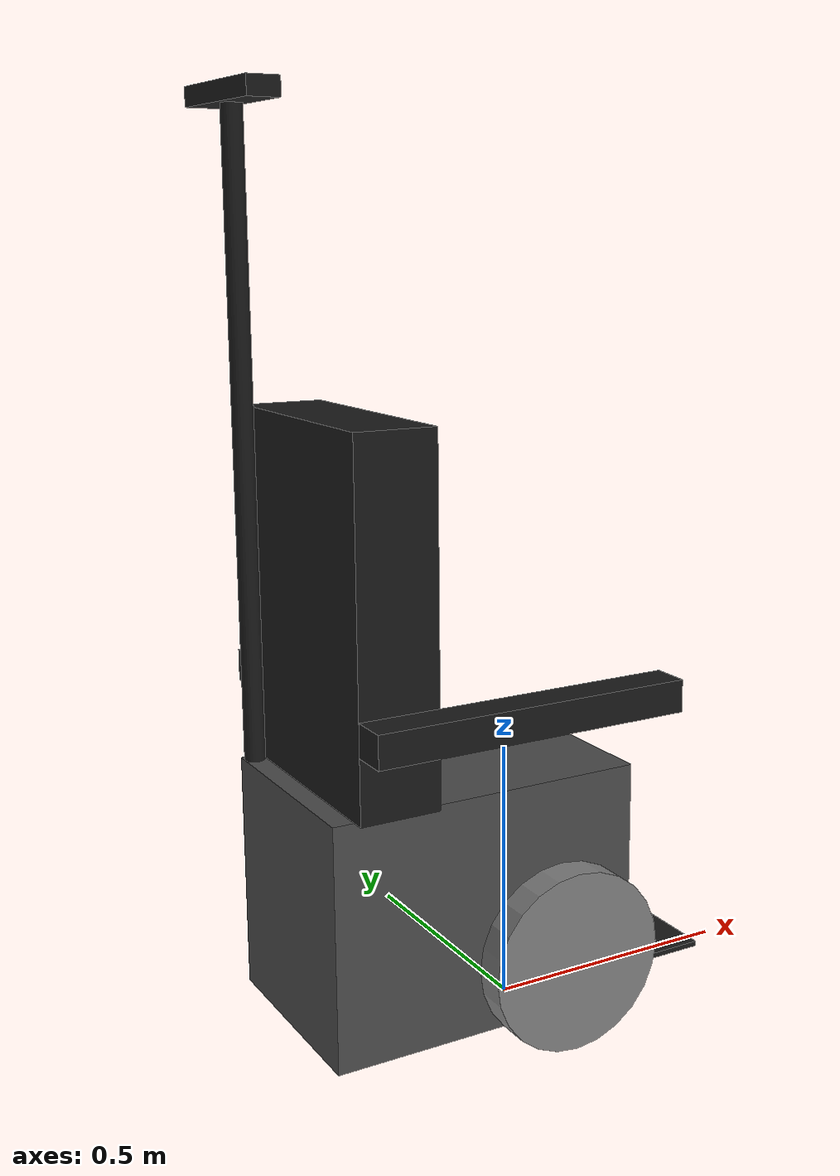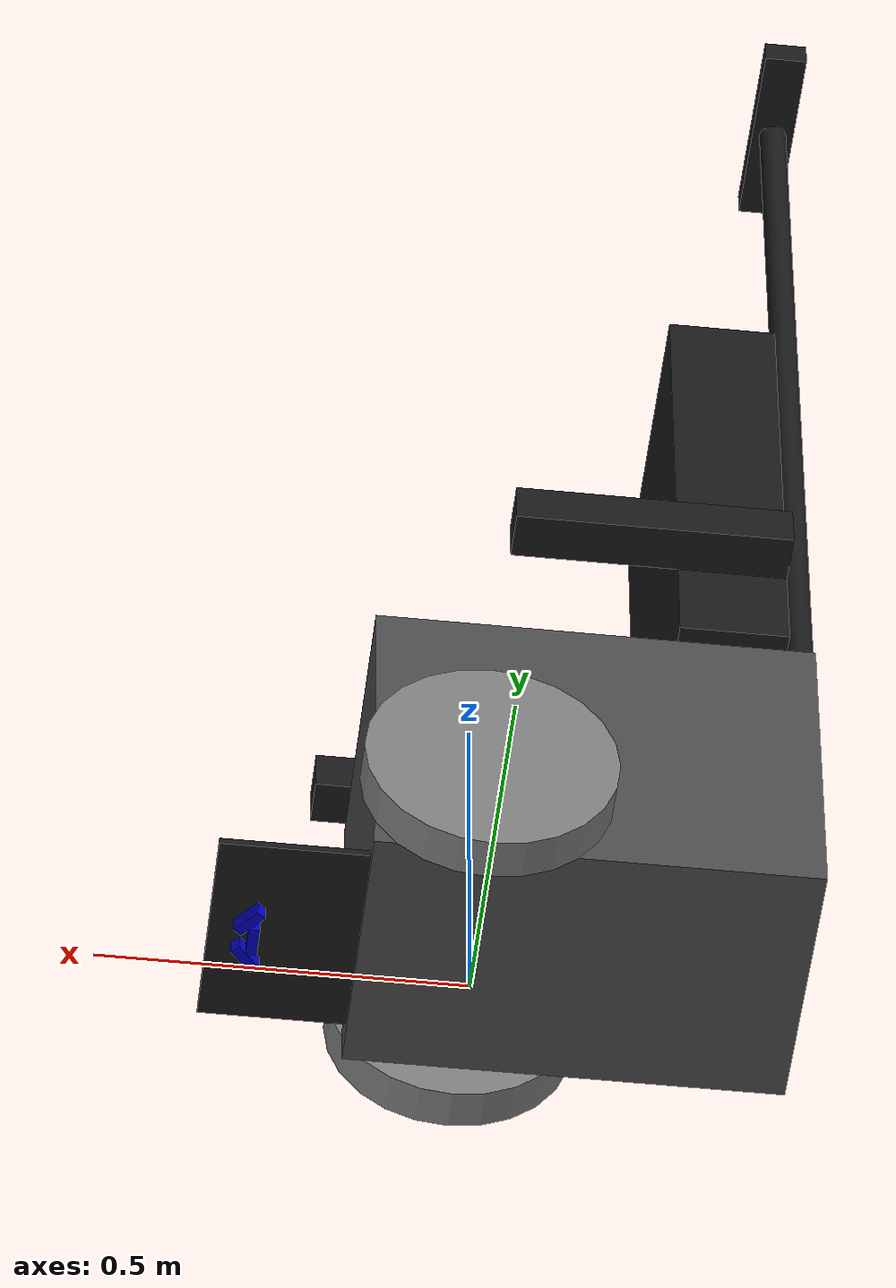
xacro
<?xml version="1.0"?>
<robot name="wheelchair" xmlns:xacro="http://www.ros.org/wiki/xacro">
    <!-- useful definition -->
    <xacro:property name="halfpi" value="1.57079633" />
    <xacro:property name="sixthpi" value="0.523598776" />

    <!-- wheelchair properties -->
    <xacro:property name="wheel_diameter" value="0.34" />
    <xacro:property name="wheel_thickness" value="0.06" />

    <!-- Robot movement base representation -->
    <xacro:property name="robot_base_height" value="0.45" />
    <xacro:property name="robot_base_length" value="0.6" />
    <xacro:property name="robot_base_width" value="0.4" />

    <xacro:property name="robot_base_offset_height" value="0.05" />
    <xacro:property name="robot_wheelbase_offset" value="0.15" />

    <!-- footrest -->
    <xacro:property name="footrest_length" value="0.2" />
    <xacro:property name="footrest_width" value="0.31" />
    <xacro:property name="footrest_height" value="0.01" />
    <xacro:property name="footrest_offset" value="0.02" />

    <!-- sonar -->
    <xacro:property name="sonar_length" value="0.015" />
    <xacro:property name="sonar_width" value="0.045" />
    <xacro:property name="sonar_height" value="0.02" />
    <xacro:property name="sonar_fwd_offset" value="0.0325" />
    <xacro:property name="sonar_side_fwd_offset" value="0.04" />
    <xacro:property name="sonar_side_offset" value="0.055" />
    <xacro:property name="sonar_angle" value="0.7" />

    <!-- kinect -->
    <xacro:property name="kinect_stand_height" value="1.18" />
    <xacro:property name="kinect_stand_diameter" value="0.039" />

    <!-- chair -->
    <xacro:property name="backrest_height" value="0.65" />
    <xacro:property name="backrest_thickness" value="0.15" />
    <xacro:property name="backrest_width" value="0.45" />

    <!-- arms -->
    <xacro:property name="arm_height" value="0.06" />
    <xacro:property name="arm_width" value="0.07" />
    <xacro:property name="left_arm_length" value="0.38" />
    <xacro:property name="right_arm_length" value="0.6" />
    <xacro:property name="arm_offset_vertical" value="0.15" />

    <!-- end wheelchair properties -->

    <!-- Colors -->
    <xacro:macro name="color_blue">
        <material name="blue">
            <color rgba="0 0 0.75 1.0" />
        </material>
    </xacro:macro>

    <xacro:macro name="color_yellow">
        <material name="yellow">
            <color rgba="0.75 0.75 0 1.0" />
        </material>
    </xacro:macro>

    <xacro:macro name="color_red_green">
        <material name="red_green">
            <color rgba="1.0 1.0 0 1.0" />
        </material>
    </xacro:macro>

    <xacro:macro name="color_black">
        <material name="black">
            <color rgba="0.1 0.1 0.1 1.0" />
        </material>
    </xacro:macro>

    <xacro:macro name="color_dark_gray">
        <material name="dark_gray">
            <color rgba="0.3 0.3 0.3 1.0" />
        </material>
    </xacro:macro>

    <xacro:macro name="color_gray">
        <material name="gray">
            <color rgba="0.5 0.5 0.5 1.0" />
        </material>
    </xacro:macro>

    <xacro:macro name="color_silver">
        <material name="silver">
            <color rgba="0.9 0.9 0.9 1.0" />
        </material>
    </xacro:macro>

    <xacro:macro name="color_green">
        <material name="green">
            <color rgba="0 0.75 0.1 1.0" />
        </material>
    </xacro:macro>

    <xacro:macro name="color_olive">
        <material name="olive">
            <color rgba="0.5 0.5 0 1.0" />
        </material>
    </xacro:macro>

    <xacro:macro name="color_orange">
        <material name="orange">
            <color rgba="1.0 0.65 0 1.0" />
        </material>
    </xacro:macro>

    <xacro:macro name="color_aqua">
        <material name="aqua">
            <color rgba="0.25 0.3 0 1.0" />
        </material>
    </xacro:macro>

    <xacro:macro name="color_dark_purple">
        <material name="dark_purple">
            <color rgba="0.3 0 0.3 1.0" />
        </material>
    </xacro:macro>

    <xacro:macro name="color_magenta">
        <material name="magenta">
            <color rgba="1.0 0 1.0 0.5" />
        </material>
    </xacro:macro>
    <!-- end colors -->

    <!-- useful macros -->
    <xacro:macro name="prism" params="name x y z *color">
        <link name="${name}">
            <visual>
                <geometry>
                    <box size="${x} ${y} ${z}" />
                </geometry>
                <xacro:insert_block name="color" />
            </visual>
            <collision>
                <geometry>
                    <box size="${x} ${y} ${z}" />
                </geometry>
            </collision>
        </link>
    </xacro:macro>

    <xacro:macro name="cyl" params="name radius length *color">
        <link name="${name}">
            <visual>
                <geometry>
                    <cylinder radius="${radius}" length="${length}" />
                </geometry>
                <xacro:insert_block name="color" />
            </visual>
            <collision>
                <geometry>
                    <cylinder radius="${radius}" length="${length}" />
                </geometry>
            </collision>
        </link>
    </xacro:macro>
    <!-- end useful macros -->

    <!-- links -->
    <!-- link that gets connected to the map, exists at ground level -->
    <link name="base_link" />

    <joint name="base_link_to_wheelchair_base" type="fixed">
        <parent link="base_link" />
        <child link="wheelchair_base" />
        <origin
            xyz="${-robot_wheelbase_offset} 0 ${robot_base_offset_height + (robot_base_height / 2)}"
            rpy="0 0 0" />
    </joint>

    <!-- Mobile base of the wheelchair, including the chair part -->
    <xacro:prism
        name="wheelchair_base"
        x="${robot_base_length}"
        y="${robot_base_width}"
        z="${robot_base_height}">
        <xacro:color_dark_gray />
    </xacro:prism>

    <!-- footrest and sonar -->
    <xacro:prism
        name="wheelchair_footrest"
        x="${footrest_length}"
        y="${footrest_width}"
        z="${footrest_height}">
        <xacro:color_black />
    </xacro:prism>

    <joint name="footrest_joint" type="fixed">
        <parent link="wheelchair_base" />
        <child link="wheelchair_footrest" />
        <origin
            xyz="${(footrest_length + robot_base_length)/2} 0 ${-robot_base_height/2 + footrest_height/2 + footrest_offset}"
            rpy="0 0 0" />
    </joint>

    <xacro:prism
        name="sonar_center"
        x="${sonar_length}"
        y="${sonar_width}"
        z="${sonar_height}">
        <xacro:color_blue />
    </xacro:prism>

    <joint name="center_sonar_joint" type="fixed">
        <parent link="wheelchair_footrest" />
        <child link="sonar_center" />
        <origin
            xyz="${sonar_fwd_offset + sonar_length/2} 0 ${-(footrest_height + sonar_height)/2}"
            rpy="0 0 0" />
    </joint>

    <xacro:prism
        name="sonar_left"
        x="${sonar_length}"
        y="${sonar_width}"
        z="${sonar_height}">
        <xacro:color_blue />
    </xacro:prism>

    <joint name="left_sonar_joint" type="fixed">
        <parent link="wheelchair_footrest" />
        <child link="sonar_left" />
        <origin
            xyz="${sonar_side_fwd_offset + sonar_length/2} ${(sonar_side_offset - sonar_width / 2)} ${-(footrest_height + sonar_height)/2}"
            rpy="0 0 ${sonar_angle}" />
    </joint>

    <xacro:prism
        name="sonar_right"
        x="${sonar_length}"
        y="${sonar_width}"
        z="${sonar_height}">
        <xacro:color_blue />
    </xacro:prism>

    <joint name="right_sonar_joint" type="fixed">
        <parent link="wheelchair_footrest" />
        <child link="sonar_right" />
        <origin
            xyz="${sonar_side_fwd_offset + sonar_length/2} ${-(sonar_side_offset - sonar_width / 2)} ${-(footrest_height + sonar_height)/2}"
            rpy="0 0 ${-sonar_angle}" />
    </joint>

    <!-- Left wheel of the wheelchair -->
    <xacro:cyl
        name="wheelchair_left_wheel"
        radius="${wheel_diameter / 2}"
        length="${wheel_thickness}">
        <xacro:color_gray />
    </xacro:cyl>

    <joint name="wheelchair_base_to_left_wheel" type="fixed">
        <parent link="wheelchair_base" />
        <child link="wheelchair_left_wheel" />
        <origin
            xyz="${robot_wheelbase_offset} ${((robot_base_width + wheel_thickness) / 2)} ${-(robot_base_offset_height + (robot_base_height / 2)) + (wheel_diameter / 2)}"
            rpy="${-halfpi} 0 0" />
        <axis xyz="1 0 0" />
    </joint>

    <!-- Right wheel of the wheelchair -->
    <xacro:cyl
        name="wheelchair_right_wheel"
        radius="${wheel_diameter / 2}"
        length="${wheel_thickness}">
        <xacro:color_gray />
    </xacro:cyl>

    <joint name="wheelchair_base_to_right_wheel" type="fixed">
        <parent link="wheelchair_base" />
        <child link="wheelchair_right_wheel" />
        <origin
            xyz="${robot_wheelbase_offset} ${-((robot_base_width + wheel_thickness) / 2)} ${-(robot_base_offset_height + (robot_base_height / 2)) + (wheel_diameter / 2)}"
            rpy="${halfpi} 0 0" />
        <axis xyz="1 0 0" />
    </joint>

    <!-- Upright part of the wheelchair's chair -->
    <xacro:prism
        name="wheelchair_upright"
        x="${backrest_thickness}"
        y="${backrest_width}"
        z="${backrest_height}">
        <xacro:color_black />
    </xacro:prism>

    <joint name="upright_joint" type="fixed">
        <parent link="wheelchair_base" />
        <child link="wheelchair_upright" />

        <origin
            xyz="${-(robot_base_length / 2) + backrest_thickness / 2 + kinect_stand_diameter} 0 ${(robot_base_height / 2) + (backrest_height / 2)}"
            rpy="0 0 0" />
    </joint>

    <!-- Left arm of the wheelchair, does not have the joystick -->
    <xacro:prism
        name="wheelchair_left_arm"
        x="${left_arm_length}"
        y="${arm_width}"
        z="${arm_height}">
        <xacro:color_black />
    </xacro:prism>

    <joint name="left_arm_joint" type="fixed">
        <parent link="wheelchair_upright" />
        <child link="wheelchair_left_arm" />
        <origin
            xyz="${(left_arm_length - backrest_thickness) / 2} ${(arm_width + backrest_width) / 2} ${-(backrest_height) / 2 + arm_offset_vertical}"
            rpy="0 0 0" />
    </joint>

    <!-- Right arm of the wheelchair, includes a joystick -->
    <xacro:prism
        name="wheelchair_right_arm"
        x="${right_arm_length}"
        y="${arm_width}"
        z="${arm_height}">
        <xacro:color_black />
    </xacro:prism>

    <joint name="right_arm_joint" type="fixed">
        <parent link="wheelchair_upright" />
        <child link="wheelchair_right_arm" />
        <origin
            xyz="${(right_arm_length - backrest_thickness) / 2} ${-(arm_width + backrest_width) / 2} ${-(backrest_height) / 2 + arm_offset_vertical}"
            rpy="0 0 0" />
    </joint>

    <!-- Carbon-fiber pole that extends upwards from the chair -->
    <xacro:cyl
        name="kinect_stand"
        radius="${kinect_stand_diameter / 2}"
        length="${kinect_stand_height}">
        <xacro:color_black />
    </xacro:cyl>

    <joint name="kinect_stand_joint" type="fixed">
        <parent link="wheelchair_base" />
        <child link="kinect_stand" />
        <origin
            xyz="${-(robot_base_length - kinect_stand_diameter) / 2} ${(robot_base_width - kinect_stand_diameter) / 2} ${(robot_base_height + kinect_stand_height) / 2}"
            rpy="0 0 0" />
    </joint>

    <!-- kinect representation -->
    <xacro:prism name="camera_link" x="0.06" y="0.285" z="0.035">
        <xacro:color_black />
    </xacro:prism>

    <joint name="kinect_joint" type="revolute">
        <parent link="kinect_stand" />
        <child link="camera_link" />
        <origin
            xyz="0 0 ${kinect_stand_height / 2}"
            rpy="0 0 0" />
        <axis xyz="0 1 0" />
        <limit lower="${-sixthpi}" upper="${sixthpi}" effort="1" velocity="1" />
    </joint>
</robot>
